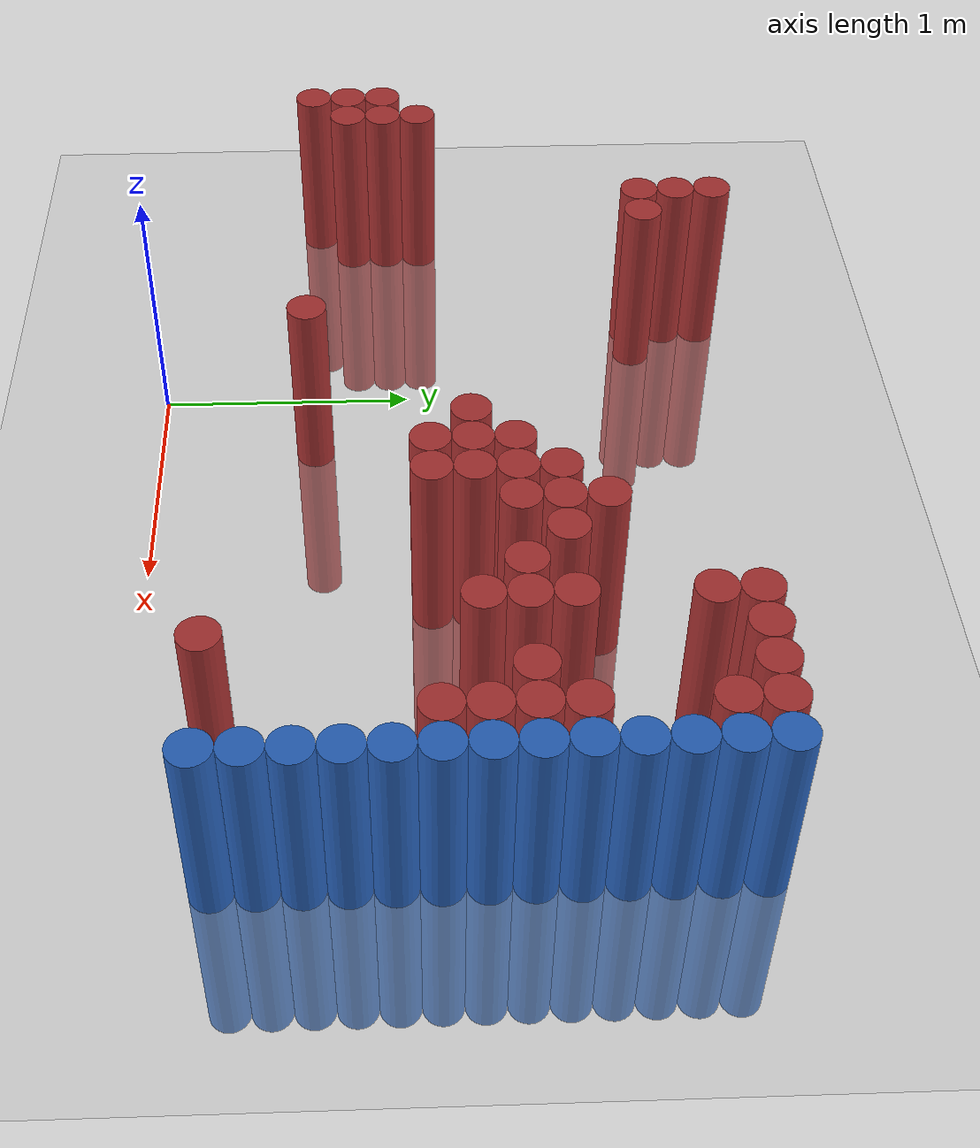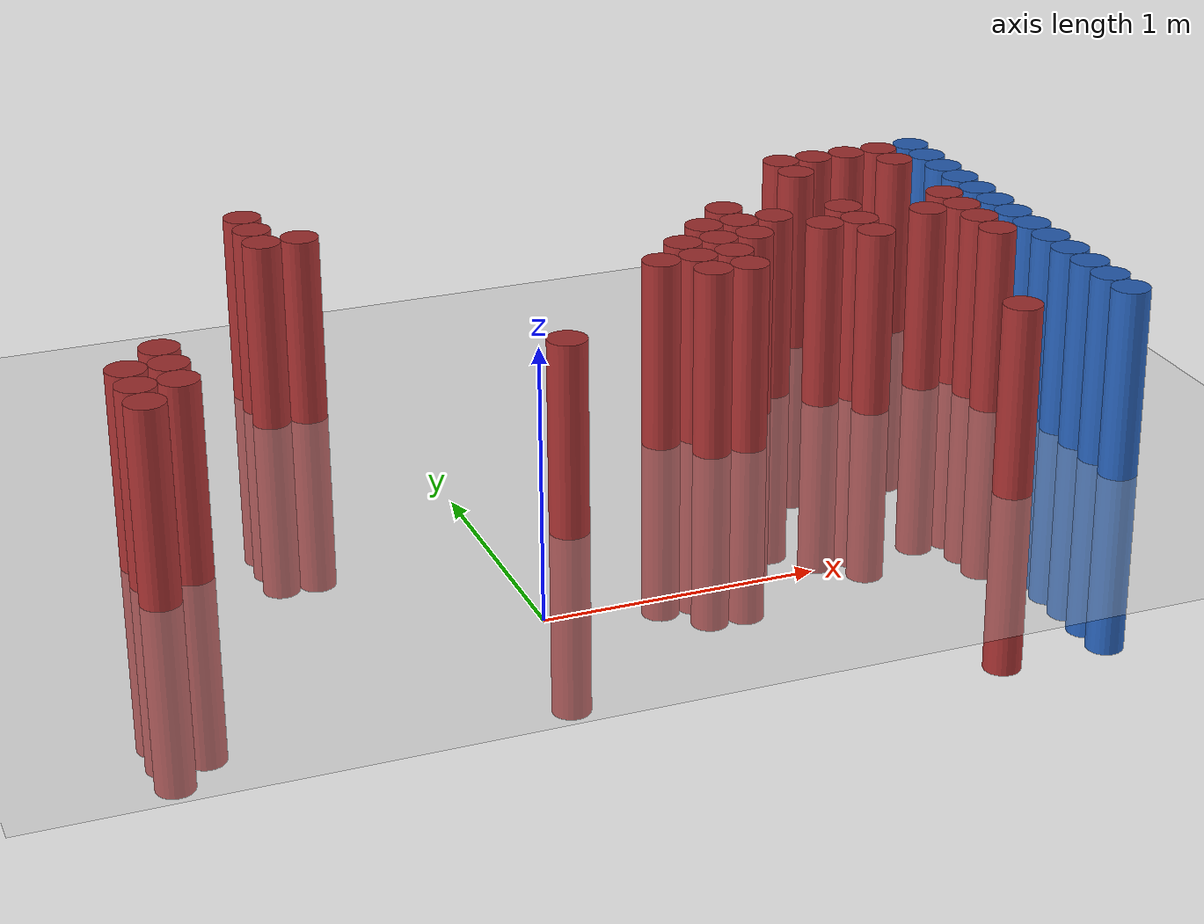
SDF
<sdf version="1.6">
 <world name="default">
  <model name="ground_plane">
   <static>1</static>
   <link name="link">
    <collision name="collision">
     <geometry><plane><normal>0 0 1</normal><size>100 100</size></plane></geometry>
     <surface><friction><ode><mu>100</mu><mu2>50</mu2></ode></friction></surface>
    </collision>
    <visual name="visual">
     <cast_shadows>0</cast_shadows>
     <geometry><plane><normal>0 0 1</normal><size>100 100</size></plane></geometry>
     <material>
      <script><uri>file://media/materials/scripts/gazebo.material</uri><name>Gazebo/Grey</name></script>
     </material>
    </visual>
   </link>
  </model>
  <model name="unit_cylinder_149">
   <static>1</static>
   <pose>-1.175000 0.625000 0.000000 0.000000 0.000000 0.000000</pose>
   <link name="link">
    <inertial>
     <mass>1</mass>
     <inertia><ixx>0.145833</ixx><ixy>0</ixy><ixz>0</ixz><iyy>0.145833</iyy><iyz>0</iyz><izz>0.125</izz></inertia>
    </inertial>
    <collision name="collision">
     <geometry><cylinder><radius>0.075000</radius><length>1.5</length></cylinder></geometry>
    </collision>
    <visual name="visual">
     <geometry><cylinder><radius>0.075000</radius><length>1.5</length></cylinder></geometry>
     <material>
      <ambient>0.648000 0.192000 0.192000 1</ambient>
      <diffuse>0.648000 0.192000 0.192000 1</diffuse>
     </material>
     <material>
      <script><name>Gazebo/Grey</name><uri>file://media/materials/scripts/gazebo.material</uri></script>
     </material>
    </visual>
   </link>
  </model>
  <model name="unit_cylinder_150">
   <static>1</static>
   <pose>-1.175000 0.775000 0.000000 0.000000 0.000000 0.000000</pose>
   <link name="link">
    <inertial>
     <mass>1</mass>
     <inertia><ixx>0.145833</ixx><ixy>0</ixy><ixz>0</ixz><iyy>0.145833</iyy><iyz>0</iyz><izz>0.125</izz></inertia>
    </inertial>
    <collision name="collision">
     <geometry><cylinder><radius>0.075000</radius><length>1.5</length></cylinder></geometry>
    </collision>
    <visual name="visual">
     <geometry><cylinder><radius>0.075000</radius><length>1.5</length></cylinder></geometry>
     <material>
      <ambient>0.648000 0.192000 0.192000 1</ambient>
      <diffuse>0.648000 0.192000 0.192000 1</diffuse>
     </material>
     <material>
      <script><name>Gazebo/Grey</name><uri>file://media/materials/scripts/gazebo.material</uri></script>
     </material>
    </visual>
   </link>
  </model>
  <model name="unit_cylinder_151">
   <static>1</static>
   <pose>-1.175000 0.925000 0.000000 0.000000 0.000000 0.000000</pose>
   <link name="link">
    <inertial>
     <mass>1</mass>
     <inertia><ixx>0.145833</ixx><ixy>0</ixy><ixz>0</ixz><iyy>0.145833</iyy><iyz>0</iyz><izz>0.125</izz></inertia>
    </inertial>
    <collision name="collision">
     <geometry><cylinder><radius>0.075000</radius><length>1.5</length></cylinder></geometry>
    </collision>
    <visual name="visual">
     <geometry><cylinder><radius>0.075000</radius><length>1.5</length></cylinder></geometry>
     <material>
      <ambient>0.648000 0.192000 0.192000 1</ambient>
      <diffuse>0.648000 0.192000 0.192000 1</diffuse>
     </material>
     <material>
      <script><name>Gazebo/Grey</name><uri>file://media/materials/scripts/gazebo.material</uri></script>
     </material>
    </visual>
   </link>
  </model>
  <model name="unit_cylinder_155">
   <static>1</static>
   <pose>-1.025000 0.775000 0.000000 0.000000 0.000000 0.000000</pose>
   <link name="link">
    <inertial>
     <mass>1</mass>
     <inertia><ixx>0.145833</ixx><ixy>0</ixy><ixz>0</ixz><iyy>0.145833</iyy><iyz>0</iyz><izz>0.125</izz></inertia>
    </inertial>
    <collision name="collision">
     <geometry><cylinder><radius>0.075000</radius><length>1.5</length></cylinder></geometry>
    </collision>
    <visual name="visual">
     <geometry><cylinder><radius>0.075000</radius><length>1.5</length></cylinder></geometry>
     <material>
      <ambient>0.648000 0.192000 0.192000 1</ambient>
      <diffuse>0.648000 0.192000 0.192000 1</diffuse>
     </material>
     <material>
      <script><name>Gazebo/Grey</name><uri>file://media/materials/scripts/gazebo.material</uri></script>
     </material>
    </visual>
   </link>
  </model>
  <model name="unit_cylinder_156">
   <static>1</static>
   <pose>-1.025000 0.925000 0.000000 0.000000 0.000000 0.000000</pose>
   <link name="link">
    <inertial>
     <mass>1</mass>
     <inertia><ixx>0.145833</ixx><ixy>0</ixy><ixz>0</ixz><iyy>0.145833</iyy><iyz>0</iyz><izz>0.125</izz></inertia>
    </inertial>
    <collision name="collision">
     <geometry><cylinder><radius>0.075000</radius><length>1.5</length></cylinder></geometry>
    </collision>
    <visual name="visual">
     <geometry><cylinder><radius>0.075000</radius><length>1.5</length></cylinder></geometry>
     <material>
      <ambient>0.648000 0.192000 0.192000 1</ambient>
      <diffuse>0.648000 0.192000 0.192000 1</diffuse>
     </material>
     <material>
      <script><name>Gazebo/Grey</name><uri>file://media/materials/scripts/gazebo.material</uri></script>
     </material>
    </visual>
   </link>
  </model>
  <model name="unit_cylinder_157">
   <static>1</static>
   <pose>-1.025000 1.075000 0.000000 0.000000 0.000000 0.000000</pose>
   <link name="link">
    <inertial>
     <mass>1</mass>
     <inertia><ixx>0.145833</ixx><ixy>0</ixy><ixz>0</ixz><iyy>0.145833</iyy><iyz>0</iyz><izz>0.125</izz></inertia>
    </inertial>
    <collision name="collision">
     <geometry><cylinder><radius>0.075000</radius><length>1.5</length></cylinder></geometry>
    </collision>
    <visual name="visual">
     <geometry><cylinder><radius>0.075000</radius><length>1.5</length></cylinder></geometry>
     <material>
      <ambient>0.648000 0.192000 0.192000 1</ambient>
      <diffuse>0.648000 0.192000 0.192000 1</diffuse>
     </material>
     <material>
      <script><name>Gazebo/Grey</name><uri>file://media/materials/scripts/gazebo.material</uri></script>
     </material>
    </visual>
   </link>
  </model>
  <model name="unit_cylinder_168">
   <static>1</static>
   <pose>-0.425000 1.975000 0.000000 0.000000 0.000000 0.000000</pose>
   <link name="link">
    <inertial>
     <mass>1</mass>
     <inertia><ixx>0.145833</ixx><ixy>0</ixy><ixz>0</ixz><iyy>0.145833</iyy><iyz>0</iyz><izz>0.125</izz></inertia>
    </inertial>
    <collision name="collision">
     <geometry><cylinder><radius>0.075000</radius><length>1.5</length></cylinder></geometry>
    </collision>
    <visual name="visual">
     <geometry><cylinder><radius>0.075000</radius><length>1.5</length></cylinder></geometry>
     <material>
      <ambient>0.648000 0.192000 0.192000 1</ambient>
      <diffuse>0.648000 0.192000 0.192000 1</diffuse>
     </material>
     <material>
      <script><name>Gazebo/Grey</name><uri>file://media/materials/scripts/gazebo.material</uri></script>
     </material>
    </visual>
   </link>
  </model>
  <model name="unit_cylinder_169">
   <static>1</static>
   <pose>-0.425000 2.125000 0.000000 0.000000 0.000000 0.000000</pose>
   <link name="link">
    <inertial>
     <mass>1</mass>
     <inertia><ixx>0.145833</ixx><ixy>0</ixy><ixz>0</ixz><iyy>0.145833</iyy><iyz>0</iyz><izz>0.125</izz></inertia>
    </inertial>
    <collision name="collision">
     <geometry><cylinder><radius>0.075000</radius><length>1.5</length></cylinder></geometry>
    </collision>
    <visual name="visual">
     <geometry><cylinder><radius>0.075000</radius><length>1.5</length></cylinder></geometry>
     <material>
      <ambient>0.648000 0.192000 0.192000 1</ambient>
      <diffuse>0.648000 0.192000 0.192000 1</diffuse>
     </material>
     <material>
      <script><name>Gazebo/Grey</name><uri>file://media/materials/scripts/gazebo.material</uri></script>
     </material>
    </visual>
   </link>
  </model>
  <model name="unit_cylinder_170">
   <static>1</static>
   <pose>-0.425000 2.275000 0.000000 0.000000 0.000000 0.000000</pose>
   <link name="link">
    <inertial>
     <mass>1</mass>
     <inertia><ixx>0.145833</ixx><ixy>0</ixy><ixz>0</ixz><iyy>0.145833</iyy><iyz>0</iyz><izz>0.125</izz></inertia>
    </inertial>
    <collision name="collision">
     <geometry><cylinder><radius>0.075000</radius><length>1.5</length></cylinder></geometry>
    </collision>
    <visual name="visual">
     <geometry><cylinder><radius>0.075000</radius><length>1.5</length></cylinder></geometry>
     <material>
      <ambient>0.648000 0.192000 0.192000 1</ambient>
      <diffuse>0.648000 0.192000 0.192000 1</diffuse>
     </material>
     <material>
      <script><name>Gazebo/Grey</name><uri>file://media/materials/scripts/gazebo.material</uri></script>
     </material>
    </visual>
   </link>
  </model>
  <model name="unit_cylinder_173">
   <static>1</static>
   <pose>-0.275000 1.975000 0.000000 0.000000 0.000000 0.000000</pose>
   <link name="link">
    <inertial>
     <mass>1</mass>
     <inertia><ixx>0.145833</ixx><ixy>0</ixy><ixz>0</ixz><iyy>0.145833</iyy><iyz>0</iyz><izz>0.125</izz></inertia>
    </inertial>
    <collision name="collision">
     <geometry><cylinder><radius>0.075000</radius><length>1.5</length></cylinder></geometry>
    </collision>
    <visual name="visual">
     <geometry><cylinder><radius>0.075000</radius><length>1.5</length></cylinder></geometry>
     <material>
      <ambient>0.648000 0.192000 0.192000 1</ambient>
      <diffuse>0.648000 0.192000 0.192000 1</diffuse>
     </material>
     <material>
      <script><name>Gazebo/Grey</name><uri>file://media/materials/scripts/gazebo.material</uri></script>
     </material>
    </visual>
   </link>
  </model>
  <model name="unit_cylinder_180">
   <static>1</static>
   <pose>0.325000 0.625000 0.000000 0.000000 0.000000 0.000000</pose>
   <link name="link">
    <inertial>
     <mass>1</mass>
     <inertia><ixx>0.145833</ixx><ixy>0</ixy><ixz>0</ixz><iyy>0.145833</iyy><iyz>0</iyz><izz>0.125</izz></inertia>
    </inertial>
    <collision name="collision">
     <geometry><cylinder><radius>0.075000</radius><length>1.5</length></cylinder></geometry>
    </collision>
    <visual name="visual">
     <geometry><cylinder><radius>0.075000</radius><length>1.5</length></cylinder></geometry>
     <material>
      <ambient>0.648000 0.192000 0.192000 1</ambient>
      <diffuse>0.648000 0.192000 0.192000 1</diffuse>
     </material>
     <material>
      <script><name>Gazebo/Grey</name><uri>file://media/materials/scripts/gazebo.material</uri></script>
     </material>
    </visual>
   </link>
  </model>
  <model name="unit_cylinder_185">
   <static>1</static>
   <pose>0.925000 1.225000 0.000000 0.000000 0.000000 0.000000</pose>
   <link name="link">
    <inertial>
     <mass>1</mass>
     <inertia><ixx>0.145833</ixx><ixy>0</ixy><ixz>0</ixz><iyy>0.145833</iyy><iyz>0</iyz><izz>0.125</izz></inertia>
    </inertial>
    <collision name="collision">
     <geometry><cylinder><radius>0.075000</radius><length>1.5</length></cylinder></geometry>
    </collision>
    <visual name="visual">
     <geometry><cylinder><radius>0.075000</radius><length>1.5</length></cylinder></geometry>
     <material>
      <ambient>0.648000 0.192000 0.192000 1</ambient>
      <diffuse>0.648000 0.192000 0.192000 1</diffuse>
     </material>
     <material>
      <script><name>Gazebo/Grey</name><uri>file://media/materials/scripts/gazebo.material</uri></script>
     </material>
    </visual>
   </link>
  </model>
  <model name="unit_cylinder_186">
   <static>1</static>
   <pose>1.075000 1.075000 0.000000 0.000000 0.000000 0.000000</pose>
   <link name="link">
    <inertial>
     <mass>1</mass>
     <inertia><ixx>0.145833</ixx><ixy>0</ixy><ixz>0</ixz><iyy>0.145833</iyy><iyz>0</iyz><izz>0.125</izz></inertia>
    </inertial>
    <collision name="collision">
     <geometry><cylinder><radius>0.075000</radius><length>1.5</length></cylinder></geometry>
    </collision>
    <visual name="visual">
     <geometry><cylinder><radius>0.075000</radius><length>1.5</length></cylinder></geometry>
     <material>
      <ambient>0.648000 0.192000 0.192000 1</ambient>
      <diffuse>0.648000 0.192000 0.192000 1</diffuse>
     </material>
     <material>
      <script><name>Gazebo/Grey</name><uri>file://media/materials/scripts/gazebo.material</uri></script>
     </material>
    </visual>
   </link>
  </model>
  <model name="unit_cylinder_187">
   <static>1</static>
   <pose>1.075000 1.225000 0.000000 0.000000 0.000000 0.000000</pose>
   <link name="link">
    <inertial>
     <mass>1</mass>
     <inertia><ixx>0.145833</ixx><ixy>0</ixy><ixz>0</ixz><iyy>0.145833</iyy><iyz>0</iyz><izz>0.125</izz></inertia>
    </inertial>
    <collision name="collision">
     <geometry><cylinder><radius>0.075000</radius><length>1.5</length></cylinder></geometry>
    </collision>
    <visual name="visual">
     <geometry><cylinder><radius>0.075000</radius><length>1.5</length></cylinder></geometry>
     <material>
      <ambient>0.648000 0.192000 0.192000 1</ambient>
      <diffuse>0.648000 0.192000 0.192000 1</diffuse>
     </material>
     <material>
      <script><name>Gazebo/Grey</name><uri>file://media/materials/scripts/gazebo.material</uri></script>
     </material>
    </visual>
   </link>
  </model>
  <model name="unit_cylinder_188">
   <static>1</static>
   <pose>1.075000 1.375000 0.000000 0.000000 0.000000 0.000000</pose>
   <link name="link">
    <inertial>
     <mass>1</mass>
     <inertia><ixx>0.145833</ixx><ixy>0</ixy><ixz>0</ixz><iyy>0.145833</iyy><iyz>0</iyz><izz>0.125</izz></inertia>
    </inertial>
    <collision name="collision">
     <geometry><cylinder><radius>0.075000</radius><length>1.5</length></cylinder></geometry>
    </collision>
    <visual name="visual">
     <geometry><cylinder><radius>0.075000</radius><length>1.5</length></cylinder></geometry>
     <material>
      <ambient>0.648000 0.192000 0.192000 1</ambient>
      <diffuse>0.648000 0.192000 0.192000 1</diffuse>
     </material>
     <material>
      <script><name>Gazebo/Grey</name><uri>file://media/materials/scripts/gazebo.material</uri></script>
     </material>
    </visual>
   </link>
  </model>
  <model name="unit_cylinder_189">
   <static>1</static>
   <pose>1.225000 1.075000 0.000000 0.000000 0.000000 0.000000</pose>
   <link name="link">
    <inertial>
     <mass>1</mass>
     <inertia><ixx>0.145833</ixx><ixy>0</ixy><ixz>0</ixz><iyy>0.145833</iyy><iyz>0</iyz><izz>0.125</izz></inertia>
    </inertial>
    <collision name="collision">
     <geometry><cylinder><radius>0.075000</radius><length>1.5</length></cylinder></geometry>
    </collision>
    <visual name="visual">
     <geometry><cylinder><radius>0.075000</radius><length>1.5</length></cylinder></geometry>
     <material>
      <ambient>0.648000 0.192000 0.192000 1</ambient>
      <diffuse>0.648000 0.192000 0.192000 1</diffuse>
     </material>
     <material>
      <script><name>Gazebo/Grey</name><uri>file://media/materials/scripts/gazebo.material</uri></script>
     </material>
    </visual>
   </link>
  </model>
  <model name="unit_cylinder_190">
   <static>1</static>
   <pose>1.225000 1.225000 0.000000 0.000000 0.000000 0.000000</pose>
   <link name="link">
    <inertial>
     <mass>1</mass>
     <inertia><ixx>0.145833</ixx><ixy>0</ixy><ixz>0</ixz><iyy>0.145833</iyy><iyz>0</iyz><izz>0.125</izz></inertia>
    </inertial>
    <collision name="collision">
     <geometry><cylinder><radius>0.075000</radius><length>1.5</length></cylinder></geometry>
    </collision>
    <visual name="visual">
     <geometry><cylinder><radius>0.075000</radius><length>1.5</length></cylinder></geometry>
     <material>
      <ambient>0.648000 0.192000 0.192000 1</ambient>
      <diffuse>0.648000 0.192000 0.192000 1</diffuse>
     </material>
     <material>
      <script><name>Gazebo/Grey</name><uri>file://media/materials/scripts/gazebo.material</uri></script>
     </material>
    </visual>
   </link>
  </model>
  <model name="unit_cylinder_191">
   <static>1</static>
   <pose>1.225000 1.375000 0.000000 0.000000 0.000000 0.000000</pose>
   <link name="link">
    <inertial>
     <mass>1</mass>
     <inertia><ixx>0.145833</ixx><ixy>0</ixy><ixz>0</ixz><iyy>0.145833</iyy><iyz>0</iyz><izz>0.125</izz></inertia>
    </inertial>
    <collision name="collision">
     <geometry><cylinder><radius>0.075000</radius><length>1.5</length></cylinder></geometry>
    </collision>
    <visual name="visual">
     <geometry><cylinder><radius>0.075000</radius><length>1.5</length></cylinder></geometry>
     <material>
      <ambient>0.648000 0.192000 0.192000 1</ambient>
      <diffuse>0.648000 0.192000 0.192000 1</diffuse>
     </material>
     <material>
      <script><name>Gazebo/Grey</name><uri>file://media/materials/scripts/gazebo.material</uri></script>
     </material>
    </visual>
   </link>
  </model>
  <model name="unit_cylinder_192">
   <static>1</static>
   <pose>1.225000 1.525000 0.000000 0.000000 0.000000 0.000000</pose>
   <link name="link">
    <inertial>
     <mass>1</mass>
     <inertia><ixx>0.145833</ixx><ixy>0</ixy><ixz>0</ixz><iyy>0.145833</iyy><iyz>0</iyz><izz>0.125</izz></inertia>
    </inertial>
    <collision name="collision">
     <geometry><cylinder><radius>0.075000</radius><length>1.5</length></cylinder></geometry>
    </collision>
    <visual name="visual">
     <geometry><cylinder><radius>0.075000</radius><length>1.5</length></cylinder></geometry>
     <material>
      <ambient>0.648000 0.192000 0.192000 1</ambient>
      <diffuse>0.648000 0.192000 0.192000 1</diffuse>
     </material>
     <material>
      <script><name>Gazebo/Grey</name><uri>file://media/materials/scripts/gazebo.material</uri></script>
     </material>
    </visual>
   </link>
  </model>
  <model name="unit_cylinder_193">
   <static>1</static>
   <pose>1.375000 1.375000 0.000000 0.000000 0.000000 0.000000</pose>
   <link name="link">
    <inertial>
     <mass>1</mass>
     <inertia><ixx>0.145833</ixx><ixy>0</ixy><ixz>0</ixz><iyy>0.145833</iyy><iyz>0</iyz><izz>0.125</izz></inertia>
    </inertial>
    <collision name="collision">
     <geometry><cylinder><radius>0.075000</radius><length>1.5</length></cylinder></geometry>
    </collision>
    <visual name="visual">
     <geometry><cylinder><radius>0.075000</radius><length>1.5</length></cylinder></geometry>
     <material>
      <ambient>0.648000 0.192000 0.192000 1</ambient>
      <diffuse>0.648000 0.192000 0.192000 1</diffuse>
     </material>
     <material>
      <script><name>Gazebo/Grey</name><uri>file://media/materials/scripts/gazebo.material</uri></script>
     </material>
    </visual>
   </link>
  </model>
  <model name="unit_cylinder_194">
   <static>1</static>
   <pose>1.375000 1.525000 0.000000 0.000000 0.000000 0.000000</pose>
   <link name="link">
    <inertial>
     <mass>1</mass>
     <inertia><ixx>0.145833</ixx><ixy>0</ixy><ixz>0</ixz><iyy>0.145833</iyy><iyz>0</iyz><izz>0.125</izz></inertia>
    </inertial>
    <collision name="collision">
     <geometry><cylinder><radius>0.075000</radius><length>1.5</length></cylinder></geometry>
    </collision>
    <visual name="visual">
     <geometry><cylinder><radius>0.075000</radius><length>1.5</length></cylinder></geometry>
     <material>
      <ambient>0.648000 0.192000 0.192000 1</ambient>
      <diffuse>0.648000 0.192000 0.192000 1</diffuse>
     </material>
     <material>
      <script><name>Gazebo/Grey</name><uri>file://media/materials/scripts/gazebo.material</uri></script>
     </material>
    </visual>
   </link>
  </model>
  <model name="unit_cylinder_195">
   <static>1</static>
   <pose>1.375000 1.675000 0.000000 0.000000 0.000000 0.000000</pose>
   <link name="link">
    <inertial>
     <mass>1</mass>
     <inertia><ixx>0.145833</ixx><ixy>0</ixy><ixz>0</ixz><iyy>0.145833</iyy><iyz>0</iyz><izz>0.125</izz></inertia>
    </inertial>
    <collision name="collision">
     <geometry><cylinder><radius>0.075000</radius><length>1.5</length></cylinder></geometry>
    </collision>
    <visual name="visual">
     <geometry><cylinder><radius>0.075000</radius><length>1.5</length></cylinder></geometry>
     <material>
      <ambient>0.648000 0.192000 0.192000 1</ambient>
      <diffuse>0.648000 0.192000 0.192000 1</diffuse>
     </material>
     <material>
      <script><name>Gazebo/Grey</name><uri>file://media/materials/scripts/gazebo.material</uri></script>
     </material>
    </visual>
   </link>
  </model>
  <model name="unit_cylinder_196">
   <static>1</static>
   <pose>1.525000 1.525000 0.000000 0.000000 0.000000 0.000000</pose>
   <link name="link">
    <inertial>
     <mass>1</mass>
     <inertia><ixx>0.145833</ixx><ixy>0</ixy><ixz>0</ixz><iyy>0.145833</iyy><iyz>0</iyz><izz>0.125</izz></inertia>
    </inertial>
    <collision name="collision">
     <geometry><cylinder><radius>0.075000</radius><length>1.5</length></cylinder></geometry>
    </collision>
    <visual name="visual">
     <geometry><cylinder><radius>0.075000</radius><length>1.5</length></cylinder></geometry>
     <material>
      <ambient>0.648000 0.192000 0.192000 1</ambient>
      <diffuse>0.648000 0.192000 0.192000 1</diffuse>
     </material>
     <material>
      <script><name>Gazebo/Grey</name><uri>file://media/materials/scripts/gazebo.material</uri></script>
     </material>
    </visual>
   </link>
  </model>
  <model name="unit_cylinder_197">
   <static>1</static>
   <pose>1.675000 1.375000 0.000000 0.000000 0.000000 0.000000</pose>
   <link name="link">
    <inertial>
     <mass>1</mass>
     <inertia><ixx>0.145833</ixx><ixy>0</ixy><ixz>0</ixz><iyy>0.145833</iyy><iyz>0</iyz><izz>0.125</izz></inertia>
    </inertial>
    <collision name="collision">
     <geometry><cylinder><radius>0.075000</radius><length>1.5</length></cylinder></geometry>
    </collision>
    <visual name="visual">
     <geometry><cylinder><radius>0.075000</radius><length>1.5</length></cylinder></geometry>
     <material>
      <ambient>0.648000 0.192000 0.192000 1</ambient>
      <diffuse>0.648000 0.192000 0.192000 1</diffuse>
     </material>
     <material>
      <script><name>Gazebo/Grey</name><uri>file://media/materials/scripts/gazebo.material</uri></script>
     </material>
    </visual>
   </link>
  </model>
  <model name="unit_cylinder_200">
   <static>1</static>
   <pose>1.825000 1.225000 0.000000 0.000000 0.000000 0.000000</pose>
   <link name="link">
    <inertial>
     <mass>1</mass>
     <inertia><ixx>0.145833</ixx><ixy>0</ixy><ixz>0</ixz><iyy>0.145833</iyy><iyz>0</iyz><izz>0.125</izz></inertia>
    </inertial>
    <collision name="collision">
     <geometry><cylinder><radius>0.075000</radius><length>1.5</length></cylinder></geometry>
    </collision>
    <visual name="visual">
     <geometry><cylinder><radius>0.075000</radius><length>1.5</length></cylinder></geometry>
     <material>
      <ambient>0.648000 0.192000 0.192000 1</ambient>
      <diffuse>0.648000 0.192000 0.192000 1</diffuse>
     </material>
     <material>
      <script><name>Gazebo/Grey</name><uri>file://media/materials/scripts/gazebo.material</uri></script>
     </material>
    </visual>
   </link>
  </model>
  <model name="unit_cylinder_201">
   <static>1</static>
   <pose>1.825000 1.375000 0.000000 0.000000 0.000000 0.000000</pose>
   <link name="link">
    <inertial>
     <mass>1</mass>
     <inertia><ixx>0.145833</ixx><ixy>0</ixy><ixz>0</ixz><iyy>0.145833</iyy><iyz>0</iyz><izz>0.125</izz></inertia>
    </inertial>
    <collision name="collision">
     <geometry><cylinder><radius>0.075000</radius><length>1.5</length></cylinder></geometry>
    </collision>
    <visual name="visual">
     <geometry><cylinder><radius>0.075000</radius><length>1.5</length></cylinder></geometry>
     <material>
      <ambient>0.648000 0.192000 0.192000 1</ambient>
      <diffuse>0.648000 0.192000 0.192000 1</diffuse>
     </material>
     <material>
      <script><name>Gazebo/Grey</name><uri>file://media/materials/scripts/gazebo.material</uri></script>
     </material>
    </visual>
   </link>
  </model>
  <model name="unit_cylinder_202">
   <static>1</static>
   <pose>1.825000 1.525000 0.000000 0.000000 0.000000 0.000000</pose>
   <link name="link">
    <inertial>
     <mass>1</mass>
     <inertia><ixx>0.145833</ixx><ixy>0</ixy><ixz>0</ixz><iyy>0.145833</iyy><iyz>0</iyz><izz>0.125</izz></inertia>
    </inertial>
    <collision name="collision">
     <geometry><cylinder><radius>0.075000</radius><length>1.5</length></cylinder></geometry>
    </collision>
    <visual name="visual">
     <geometry><cylinder><radius>0.075000</radius><length>1.5</length></cylinder></geometry>
     <material>
      <ambient>0.648000 0.192000 0.192000 1</ambient>
      <diffuse>0.648000 0.192000 0.192000 1</diffuse>
     </material>
     <material>
      <script><name>Gazebo/Grey</name><uri>file://media/materials/scripts/gazebo.material</uri></script>
     </material>
    </visual>
   </link>
  </model>
  <model name="unit_cylinder_203">
   <static>1</static>
   <pose>1.825000 1.975000 0.000000 0.000000 0.000000 0.000000</pose>
   <link name="link">
    <inertial>
     <mass>1</mass>
     <inertia><ixx>0.145833</ixx><ixy>0</ixy><ixz>0</ixz><iyy>0.145833</iyy><iyz>0</iyz><izz>0.125</izz></inertia>
    </inertial>
    <collision name="collision">
     <geometry><cylinder><radius>0.075000</radius><length>1.5</length></cylinder></geometry>
    </collision>
    <visual name="visual">
     <geometry><cylinder><radius>0.075000</radius><length>1.5</length></cylinder></geometry>
     <material>
      <ambient>0.648000 0.192000 0.192000 1</ambient>
      <diffuse>0.648000 0.192000 0.192000 1</diffuse>
     </material>
     <material>
      <script><name>Gazebo/Grey</name><uri>file://media/materials/scripts/gazebo.material</uri></script>
     </material>
    </visual>
   </link>
  </model>
  <model name="unit_cylinder_204">
   <static>1</static>
   <pose>1.825000 2.125000 0.000000 0.000000 0.000000 0.000000</pose>
   <link name="link">
    <inertial>
     <mass>1</mass>
     <inertia><ixx>0.145833</ixx><ixy>0</ixy><ixz>0</ixz><iyy>0.145833</iyy><iyz>0</iyz><izz>0.125</izz></inertia>
    </inertial>
    <collision name="collision">
     <geometry><cylinder><radius>0.075000</radius><length>1.5</length></cylinder></geometry>
    </collision>
    <visual name="visual">
     <geometry><cylinder><radius>0.075000</radius><length>1.5</length></cylinder></geometry>
     <material>
      <ambient>0.648000 0.192000 0.192000 1</ambient>
      <diffuse>0.648000 0.192000 0.192000 1</diffuse>
     </material>
     <material>
      <script><name>Gazebo/Grey</name><uri>file://media/materials/scripts/gazebo.material</uri></script>
     </material>
    </visual>
   </link>
  </model>
  <model name="unit_cylinder_206">
   <static>1</static>
   <pose>1.975000 0.325000 0.000000 0.000000 0.000000 0.000000</pose>
   <link name="link">
    <inertial>
     <mass>1</mass>
     <inertia><ixx>0.145833</ixx><ixy>0</ixy><ixz>0</ixz><iyy>0.145833</iyy><iyz>0</iyz><izz>0.125</izz></inertia>
    </inertial>
    <collision name="collision">
     <geometry><cylinder><radius>0.075000</radius><length>1.5</length></cylinder></geometry>
    </collision>
    <visual name="visual">
     <geometry><cylinder><radius>0.075000</radius><length>1.5</length></cylinder></geometry>
     <material>
      <ambient>0.648000 0.192000 0.192000 1</ambient>
      <diffuse>0.648000 0.192000 0.192000 1</diffuse>
     </material>
     <material>
      <script><name>Gazebo/Grey</name><uri>file://media/materials/scripts/gazebo.material</uri></script>
     </material>
    </visual>
   </link>
  </model>
  <model name="unit_cylinder_207">
   <static>1</static>
   <pose>1.975000 2.125000 0.000000 0.000000 0.000000 0.000000</pose>
   <link name="link">
    <inertial>
     <mass>1</mass>
     <inertia><ixx>0.145833</ixx><ixy>0</ixy><ixz>0</ixz><iyy>0.145833</iyy><iyz>0</iyz><izz>0.125</izz></inertia>
    </inertial>
    <collision name="collision">
     <geometry><cylinder><radius>0.075000</radius><length>1.5</length></cylinder></geometry>
    </collision>
    <visual name="visual">
     <geometry><cylinder><radius>0.075000</radius><length>1.5</length></cylinder></geometry>
     <material>
      <ambient>0.648000 0.192000 0.192000 1</ambient>
      <diffuse>0.648000 0.192000 0.192000 1</diffuse>
     </material>
     <material>
      <script><name>Gazebo/Grey</name><uri>file://media/materials/scripts/gazebo.material</uri></script>
     </material>
    </visual>
   </link>
  </model>
  <model name="unit_cylinder_208">
   <static>1</static>
   <pose>2.125000 1.375000 0.000000 0.000000 0.000000 0.000000</pose>
   <link name="link">
    <inertial>
     <mass>1</mass>
     <inertia><ixx>0.145833</ixx><ixy>0</ixy><ixz>0</ixz><iyy>0.145833</iyy><iyz>0</iyz><izz>0.125</izz></inertia>
    </inertial>
    <collision name="collision">
     <geometry><cylinder><radius>0.075000</radius><length>1.5</length></cylinder></geometry>
    </collision>
    <visual name="visual">
     <geometry><cylinder><radius>0.075000</radius><length>1.5</length></cylinder></geometry>
     <material>
      <ambient>0.648000 0.192000 0.192000 1</ambient>
      <diffuse>0.648000 0.192000 0.192000 1</diffuse>
     </material>
     <material>
      <script><name>Gazebo/Grey</name><uri>file://media/materials/scripts/gazebo.material</uri></script>
     </material>
    </visual>
   </link>
  </model>
  <model name="unit_cylinder_209">
   <static>1</static>
   <pose>2.125000 2.125000 0.000000 0.000000 0.000000 0.000000</pose>
   <link name="link">
    <inertial>
     <mass>1</mass>
     <inertia><ixx>0.145833</ixx><ixy>0</ixy><ixz>0</ixz><iyy>0.145833</iyy><iyz>0</iyz><izz>0.125</izz></inertia>
    </inertial>
    <collision name="collision">
     <geometry><cylinder><radius>0.075000</radius><length>1.5</length></cylinder></geometry>
    </collision>
    <visual name="visual">
     <geometry><cylinder><radius>0.075000</radius><length>1.5</length></cylinder></geometry>
     <material>
      <ambient>0.648000 0.192000 0.192000 1</ambient>
      <diffuse>0.648000 0.192000 0.192000 1</diffuse>
     </material>
     <material>
      <script><name>Gazebo/Grey</name><uri>file://media/materials/scripts/gazebo.material</uri></script>
     </material>
    </visual>
   </link>
  </model>
  <model name="unit_cylinder_212">
   <static>1</static>
   <pose>2.275000 1.075000 0.000000 0.000000 0.000000 0.000000</pose>
   <link name="link">
    <inertial>
     <mass>1</mass>
     <inertia><ixx>0.145833</ixx><ixy>0</ixy><ixz>0</ixz><iyy>0.145833</iyy><iyz>0</iyz><izz>0.125</izz></inertia>
    </inertial>
    <collision name="collision">
     <geometry><cylinder><radius>0.075000</radius><length>1.5</length></cylinder></geometry>
    </collision>
    <visual name="visual">
     <geometry><cylinder><radius>0.075000</radius><length>1.5</length></cylinder></geometry>
     <material>
      <ambient>0.648000 0.192000 0.192000 1</ambient>
      <diffuse>0.648000 0.192000 0.192000 1</diffuse>
     </material>
     <material>
      <script><name>Gazebo/Grey</name><uri>file://media/materials/scripts/gazebo.material</uri></script>
     </material>
    </visual>
   </link>
  </model>
  <model name="unit_cylinder_213">
   <static>1</static>
   <pose>2.275000 1.225000 0.000000 0.000000 0.000000 0.000000</pose>
   <link name="link">
    <inertial>
     <mass>1</mass>
     <inertia><ixx>0.145833</ixx><ixy>0</ixy><ixz>0</ixz><iyy>0.145833</iyy><iyz>0</iyz><izz>0.125</izz></inertia>
    </inertial>
    <collision name="collision">
     <geometry><cylinder><radius>0.075000</radius><length>1.5</length></cylinder></geometry>
    </collision>
    <visual name="visual">
     <geometry><cylinder><radius>0.075000</radius><length>1.5</length></cylinder></geometry>
     <material>
      <ambient>0.648000 0.192000 0.192000 1</ambient>
      <diffuse>0.648000 0.192000 0.192000 1</diffuse>
     </material>
     <material>
      <script><name>Gazebo/Grey</name><uri>file://media/materials/scripts/gazebo.material</uri></script>
     </material>
    </visual>
   </link>
  </model>
  <model name="unit_cylinder_214">
   <static>1</static>
   <pose>2.275000 1.375000 0.000000 0.000000 0.000000 0.000000</pose>
   <link name="link">
    <inertial>
     <mass>1</mass>
     <inertia><ixx>0.145833</ixx><ixy>0</ixy><ixz>0</ixz><iyy>0.145833</iyy><iyz>0</iyz><izz>0.125</izz></inertia>
    </inertial>
    <collision name="collision">
     <geometry><cylinder><radius>0.075000</radius><length>1.5</length></cylinder></geometry>
    </collision>
    <visual name="visual">
     <geometry><cylinder><radius>0.075000</radius><length>1.5</length></cylinder></geometry>
     <material>
      <ambient>0.648000 0.192000 0.192000 1</ambient>
      <diffuse>0.648000 0.192000 0.192000 1</diffuse>
     </material>
     <material>
      <script><name>Gazebo/Grey</name><uri>file://media/materials/scripts/gazebo.material</uri></script>
     </material>
    </visual>
   </link>
  </model>
  <model name="unit_cylinder_215">
   <static>1</static>
   <pose>2.275000 1.525000 0.000000 0.000000 0.000000 0.000000</pose>
   <link name="link">
    <inertial>
     <mass>1</mass>
     <inertia><ixx>0.145833</ixx><ixy>0</ixy><ixz>0</ixz><iyy>0.145833</iyy><iyz>0</iyz><izz>0.125</izz></inertia>
    </inertial>
    <collision name="collision">
     <geometry><cylinder><radius>0.075000</radius><length>1.5</length></cylinder></geometry>
    </collision>
    <visual name="visual">
     <geometry><cylinder><radius>0.075000</radius><length>1.5</length></cylinder></geometry>
     <material>
      <ambient>0.648000 0.192000 0.192000 1</ambient>
      <diffuse>0.648000 0.192000 0.192000 1</diffuse>
     </material>
     <material>
      <script><name>Gazebo/Grey</name><uri>file://media/materials/scripts/gazebo.material</uri></script>
     </material>
    </visual>
   </link>
  </model>
  <model name="unit_cylinder_216">
   <static>1</static>
   <pose>2.275000 1.975000 0.000000 0.000000 0.000000 0.000000</pose>
   <link name="link">
    <inertial>
     <mass>1</mass>
     <inertia><ixx>0.145833</ixx><ixy>0</ixy><ixz>0</ixz><iyy>0.145833</iyy><iyz>0</iyz><izz>0.125</izz></inertia>
    </inertial>
    <collision name="collision">
     <geometry><cylinder><radius>0.075000</radius><length>1.5</length></cylinder></geometry>
    </collision>
    <visual name="visual">
     <geometry><cylinder><radius>0.075000</radius><length>1.5</length></cylinder></geometry>
     <material>
      <ambient>0.648000 0.192000 0.192000 1</ambient>
      <diffuse>0.648000 0.192000 0.192000 1</diffuse>
     </material>
     <material>
      <script><name>Gazebo/Grey</name><uri>file://media/materials/scripts/gazebo.material</uri></script>
     </material>
    </visual>
   </link>
  </model>
  <model name="unit_cylinder_217">
   <static>1</static>
   <pose>2.275000 2.125000 0.000000 0.000000 0.000000 0.000000</pose>
   <link name="link">
    <inertial>
     <mass>1</mass>
     <inertia><ixx>0.145833</ixx><ixy>0</ixy><ixz>0</ixz><iyy>0.145833</iyy><iyz>0</iyz><izz>0.125</izz></inertia>
    </inertial>
    <collision name="collision">
     <geometry><cylinder><radius>0.075000</radius><length>1.5</length></cylinder></geometry>
    </collision>
    <visual name="visual">
     <geometry><cylinder><radius>0.075000</radius><length>1.5</length></cylinder></geometry>
     <material>
      <ambient>0.648000 0.192000 0.192000 1</ambient>
      <diffuse>0.648000 0.192000 0.192000 1</diffuse>
     </material>
     <material>
      <script><name>Gazebo/Grey</name><uri>file://media/materials/scripts/gazebo.material</uri></script>
     </material>
    </visual>
   </link>
  </model>
  <model name="unit_cylinder_227">
   <static>1</static>
   <pose>2.425000 0.325000 0.000000 0.000000 0.000000 0.000000</pose>
   <link name="link">
    <inertial>
     <mass>1</mass>
     <inertia><ixx>0.145833</ixx><ixy>0</ixy><ixz>0</ixz><iyy>0.145833</iyy><iyz>0</iyz><izz>0.125</izz></inertia>
    </inertial>
    <collision name="collision">
     <geometry><cylinder><radius>0.075000</radius><length>1.5</length></cylinder></geometry>
    </collision>
    <visual name="visual">
     <geometry><cylinder><radius>0.075000</radius><length>1.5</length></cylinder></geometry>
     <material>
      <ambient>0.152000 0.379000 0.720000 1</ambient>
      <diffuse>0.152000 0.379000 0.720000 1</diffuse>
     </material>
     <material>
      <script><name>Gazebo/Grey</name><uri>file://media/materials/scripts/gazebo.material</uri></script>
     </material>
    </visual>
   </link>
  </model>
  <model name="unit_cylinder_228">
   <static>1</static>
   <pose>2.425000 0.475000 0.000000 0.000000 0.000000 0.000000</pose>
   <link name="link">
    <inertial>
     <mass>1</mass>
     <inertia><ixx>0.145833</ixx><ixy>0</ixy><ixz>0</ixz><iyy>0.145833</iyy><iyz>0</iyz><izz>0.125</izz></inertia>
    </inertial>
    <collision name="collision">
     <geometry><cylinder><radius>0.075000</radius><length>1.5</length></cylinder></geometry>
    </collision>
    <visual name="visual">
     <geometry><cylinder><radius>0.075000</radius><length>1.5</length></cylinder></geometry>
     <material>
      <ambient>0.152000 0.379000 0.720000 1</ambient>
      <diffuse>0.152000 0.379000 0.720000 1</diffuse>
     </material>
     <material>
      <script><name>Gazebo/Grey</name><uri>file://media/materials/scripts/gazebo.material</uri></script>
     </material>
    </visual>
   </link>
  </model>
  <model name="unit_cylinder_229">
   <static>1</static>
   <pose>2.425000 0.625000 0.000000 0.000000 0.000000 0.000000</pose>
   <link name="link">
    <inertial>
     <mass>1</mass>
     <inertia><ixx>0.145833</ixx><ixy>0</ixy><ixz>0</ixz><iyy>0.145833</iyy><iyz>0</iyz><izz>0.125</izz></inertia>
    </inertial>
    <collision name="collision">
     <geometry><cylinder><radius>0.075000</radius><length>1.5</length></cylinder></geometry>
    </collision>
    <visual name="visual">
     <geometry><cylinder><radius>0.075000</radius><length>1.5</length></cylinder></geometry>
     <material>
      <ambient>0.152000 0.379000 0.720000 1</ambient>
      <diffuse>0.152000 0.379000 0.720000 1</diffuse>
     </material>
     <material>
      <script><name>Gazebo/Grey</name><uri>file://media/materials/scripts/gazebo.material</uri></script>
     </material>
    </visual>
   </link>
  </model>
  <model name="unit_cylinder_230">
   <static>1</static>
   <pose>2.425000 0.775000 0.000000 0.000000 0.000000 0.000000</pose>
   <link name="link">
    <inertial>
     <mass>1</mass>
     <inertia><ixx>0.145833</ixx><ixy>0</ixy><ixz>0</ixz><iyy>0.145833</iyy><iyz>0</iyz><izz>0.125</izz></inertia>
    </inertial>
    <collision name="collision">
     <geometry><cylinder><radius>0.075000</radius><length>1.5</length></cylinder></geometry>
    </collision>
    <visual name="visual">
     <geometry><cylinder><radius>0.075000</radius><length>1.5</length></cylinder></geometry>
     <material>
      <ambient>0.152000 0.379000 0.720000 1</ambient>
      <diffuse>0.152000 0.379000 0.720000 1</diffuse>
     </material>
     <material>
      <script><name>Gazebo/Grey</name><uri>file://media/materials/scripts/gazebo.material</uri></script>
     </material>
    </visual>
   </link>
  </model>
  <model name="unit_cylinder_231">
   <static>1</static>
   <pose>2.425000 0.925000 0.000000 0.000000 0.000000 0.000000</pose>
   <link name="link">
    <inertial>
     <mass>1</mass>
     <inertia><ixx>0.145833</ixx><ixy>0</ixy><ixz>0</ixz><iyy>0.145833</iyy><iyz>0</iyz><izz>0.125</izz></inertia>
    </inertial>
    <collision name="collision">
     <geometry><cylinder><radius>0.075000</radius><length>1.5</length></cylinder></geometry>
    </collision>
    <visual name="visual">
     <geometry><cylinder><radius>0.075000</radius><length>1.5</length></cylinder></geometry>
     <material>
      <ambient>0.152000 0.379000 0.720000 1</ambient>
      <diffuse>0.152000 0.379000 0.720000 1</diffuse>
     </material>
     <material>
      <script><name>Gazebo/Grey</name><uri>file://media/materials/scripts/gazebo.material</uri></script>
     </material>
    </visual>
   </link>
  </model>
  <model name="unit_cylinder_232">
   <static>1</static>
   <pose>2.425000 1.075000 0.000000 0.000000 0.000000 0.000000</pose>
   <link name="link">
    <inertial>
     <mass>1</mass>
     <inertia><ixx>0.145833</ixx><ixy>0</ixy><ixz>0</ixz><iyy>0.145833</iyy><iyz>0</iyz><izz>0.125</izz></inertia>
    </inertial>
    <collision name="collision">
     <geometry><cylinder><radius>0.075000</radius><length>1.5</length></cylinder></geometry>
    </collision>
    <visual name="visual">
     <geometry><cylinder><radius>0.075000</radius><length>1.5</length></cylinder></geometry>
     <material>
      <ambient>0.152000 0.379000 0.720000 1</ambient>
      <diffuse>0.152000 0.379000 0.720000 1</diffuse>
     </material>
     <material>
      <script><name>Gazebo/Grey</name><uri>file://media/materials/scripts/gazebo.material</uri></script>
     </material>
    </visual>
   </link>
  </model>
  <model name="unit_cylinder_233">
   <static>1</static>
   <pose>2.425000 1.225000 0.000000 0.000000 0.000000 0.000000</pose>
   <link name="link">
    <inertial>
     <mass>1</mass>
     <inertia><ixx>0.145833</ixx><ixy>0</ixy><ixz>0</ixz><iyy>0.145833</iyy><iyz>0</iyz><izz>0.125</izz></inertia>
    </inertial>
    <collision name="collision">
     <geometry><cylinder><radius>0.075000</radius><length>1.5</length></cylinder></geometry>
    </collision>
    <visual name="visual">
     <geometry><cylinder><radius>0.075000</radius><length>1.5</length></cylinder></geometry>
     <material>
      <ambient>0.152000 0.379000 0.720000 1</ambient>
      <diffuse>0.152000 0.379000 0.720000 1</diffuse>
     </material>
     <material>
      <script><name>Gazebo/Grey</name><uri>file://media/materials/scripts/gazebo.material</uri></script>
     </material>
    </visual>
   </link>
  </model>
  <model name="unit_cylinder_234">
   <static>1</static>
   <pose>2.425000 1.375000 0.000000 0.000000 0.000000 0.000000</pose>
   <link name="link">
    <inertial>
     <mass>1</mass>
     <inertia><ixx>0.145833</ixx><ixy>0</ixy><ixz>0</ixz><iyy>0.145833</iyy><iyz>0</iyz><izz>0.125</izz></inertia>
    </inertial>
    <collision name="collision">
     <geometry><cylinder><radius>0.075000</radius><length>1.5</length></cylinder></geometry>
    </collision>
    <visual name="visual">
     <geometry><cylinder><radius>0.075000</radius><length>1.5</length></cylinder></geometry>
     <material>
      <ambient>0.152000 0.379000 0.720000 1</ambient>
      <diffuse>0.152000 0.379000 0.720000 1</diffuse>
     </material>
     <material>
      <script><name>Gazebo/Grey</name><uri>file://media/materials/scripts/gazebo.material</uri></script>
     </material>
    </visual>
   </link>
  </model>
  <model name="unit_cylinder_235">
   <static>1</static>
   <pose>2.425000 1.525000 0.000000 0.000000 0.000000 0.000000</pose>
   <link name="link">
    <inertial>
     <mass>1</mass>
     <inertia><ixx>0.145833</ixx><ixy>0</ixy><ixz>0</ixz><iyy>0.145833</iyy><iyz>0</iyz><izz>0.125</izz></inertia>
    </inertial>
    <collision name="collision">
     <geometry><cylinder><radius>0.075000</radius><length>1.5</length></cylinder></geometry>
    </collision>
    <visual name="visual">
     <geometry><cylinder><radius>0.075000</radius><length>1.5</length></cylinder></geometry>
     <material>
      <ambient>0.152000 0.379000 0.720000 1</ambient>
      <diffuse>0.152000 0.379000 0.720000 1</diffuse>
     </material>
     <material>
      <script><name>Gazebo/Grey</name><uri>file://media/materials/scripts/gazebo.material</uri></script>
     </material>
    </visual>
   </link>
  </model>
  <model name="unit_cylinder_236">
   <static>1</static>
   <pose>2.425000 1.675000 0.000000 0.000000 0.000000 0.000000</pose>
   <link name="link">
    <inertial>
     <mass>1</mass>
     <inertia><ixx>0.145833</ixx><ixy>0</ixy><ixz>0</ixz><iyy>0.145833</iyy><iyz>0</iyz><izz>0.125</izz></inertia>
    </inertial>
    <collision name="collision">
     <geometry><cylinder><radius>0.075000</radius><length>1.5</length></cylinder></geometry>
    </collision>
    <visual name="visual">
     <geometry><cylinder><radius>0.075000</radius><length>1.5</length></cylinder></geometry>
     <material>
      <ambient>0.152000 0.379000 0.720000 1</ambient>
      <diffuse>0.152000 0.379000 0.720000 1</diffuse>
     </material>
     <material>
      <script><name>Gazebo/Grey</name><uri>file://media/materials/scripts/gazebo.material</uri></script>
     </material>
    </visual>
   </link>
  </model>
  <model name="unit_cylinder_237">
   <static>1</static>
   <pose>2.425000 1.825000 0.000000 0.000000 0.000000 0.000000</pose>
   <link name="link">
    <inertial>
     <mass>1</mass>
     <inertia><ixx>0.145833</ixx><ixy>0</ixy><ixz>0</ixz><iyy>0.145833</iyy><iyz>0</iyz><izz>0.125</izz></inertia>
    </inertial>
    <collision name="collision">
     <geometry><cylinder><radius>0.075000</radius><length>1.5</length></cylinder></geometry>
    </collision>
    <visual name="visual">
     <geometry><cylinder><radius>0.075000</radius><length>1.5</length></cylinder></geometry>
     <material>
      <ambient>0.152000 0.379000 0.720000 1</ambient>
      <diffuse>0.152000 0.379000 0.720000 1</diffuse>
     </material>
     <material>
      <script><name>Gazebo/Grey</name><uri>file://media/materials/scripts/gazebo.material</uri></script>
     </material>
    </visual>
   </link>
  </model>
  <model name="unit_cylinder_238">
   <static>1</static>
   <pose>2.425000 1.975000 0.000000 0.000000 0.000000 0.000000</pose>
   <link name="link">
    <inertial>
     <mass>1</mass>
     <inertia><ixx>0.145833</ixx><ixy>0</ixy><ixz>0</ixz><iyy>0.145833</iyy><iyz>0</iyz><izz>0.125</izz></inertia>
    </inertial>
    <collision name="collision">
     <geometry><cylinder><radius>0.075000</radius><length>1.5</length></cylinder></geometry>
    </collision>
    <visual name="visual">
     <geometry><cylinder><radius>0.075000</radius><length>1.5</length></cylinder></geometry>
     <material>
      <ambient>0.152000 0.379000 0.720000 1</ambient>
      <diffuse>0.152000 0.379000 0.720000 1</diffuse>
     </material>
     <material>
      <script><name>Gazebo/Grey</name><uri>file://media/materials/scripts/gazebo.material</uri></script>
     </material>
    </visual>
   </link>
  </model>
  <model name="unit_cylinder_239">
   <static>1</static>
   <pose>2.425000 2.125000 0.000000 0.000000 0.000000 0.000000</pose>
   <link name="link">
    <inertial>
     <mass>1</mass>
     <inertia><ixx>0.145833</ixx><ixy>0</ixy><ixz>0</ixz><iyy>0.145833</iyy><iyz>0</iyz><izz>0.125</izz></inertia>
    </inertial>
    <collision name="collision">
     <geometry><cylinder><radius>0.075000</radius><length>1.5</length></cylinder></geometry>
    </collision>
    <visual name="visual">
     <geometry><cylinder><radius>0.075000</radius><length>1.5</length></cylinder></geometry>
     <material>
      <ambient>0.152000 0.379000 0.720000 1</ambient>
      <diffuse>0.152000 0.379000 0.720000 1</diffuse>
     </material>
     <material>
      <script><name>Gazebo/Grey</name><uri>file://media/materials/scripts/gazebo.material</uri></script>
     </material>
    </visual>
   </link>
  </model>
 </world>
</sdf>
